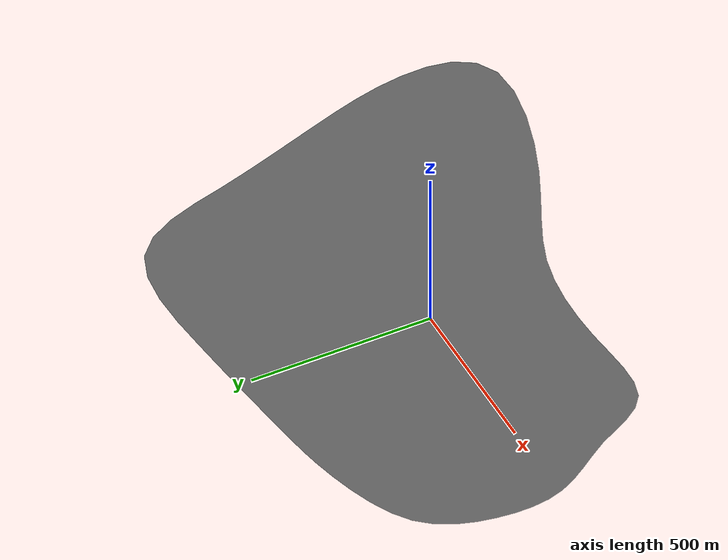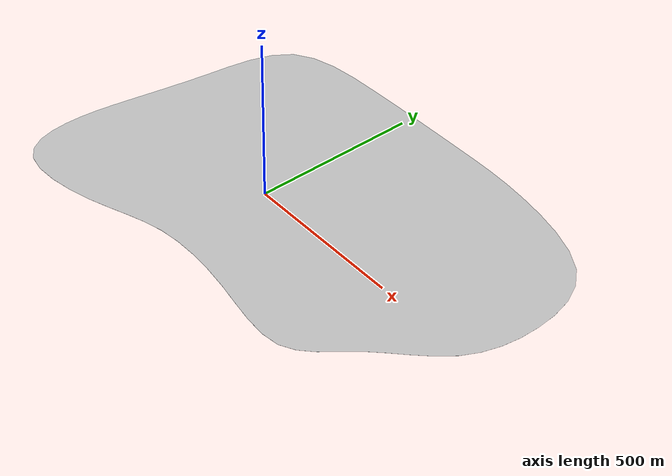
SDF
<?xml version="1.0"?>
<sdf version="1.4">
  <model name="cloud">
    <pose>0 0 0 0 0 0</pose>
    <link name="body">
      <enable_wind>true</enable_wind>
      <visual name="visual">
        <geometry>
          <mesh>
          <uri>model://my_cloud/meshes/cloud.stl</uri>
          <scale>100 100 1</scale>
          </mesh>
        </geometry>
      </visual>
    </link>
  </model>
</sdf>
